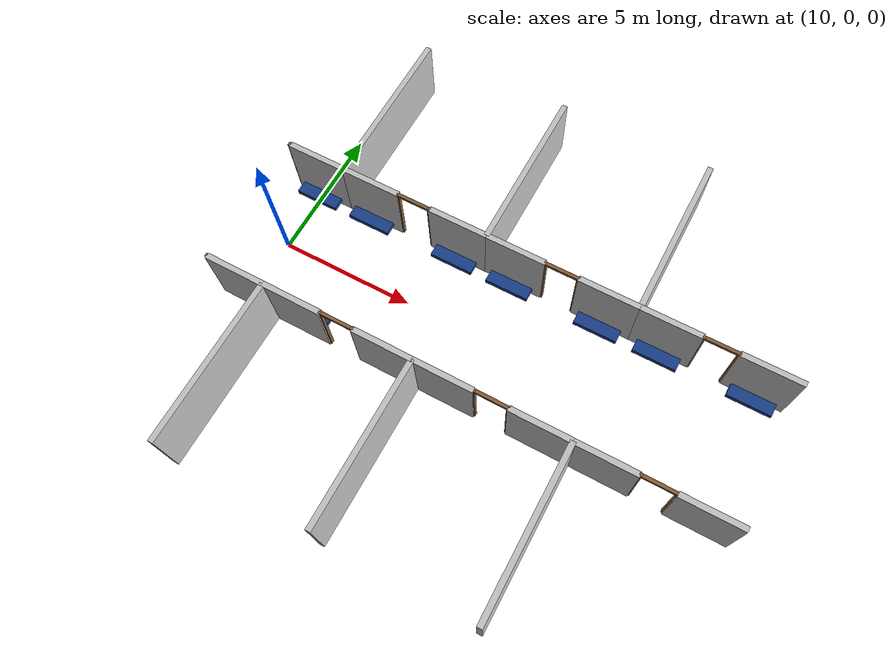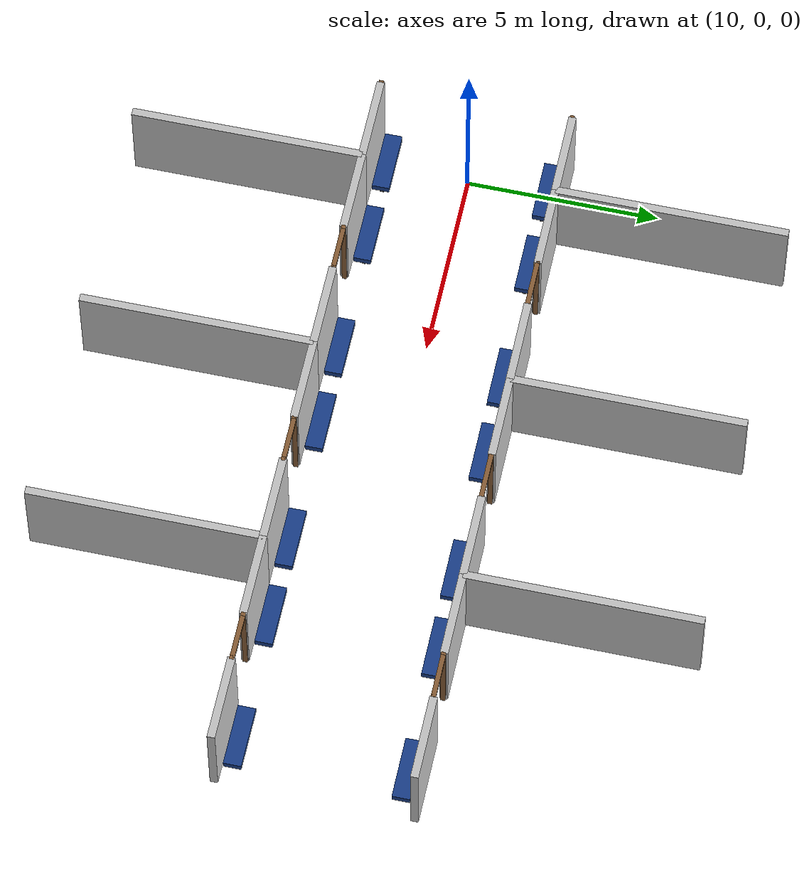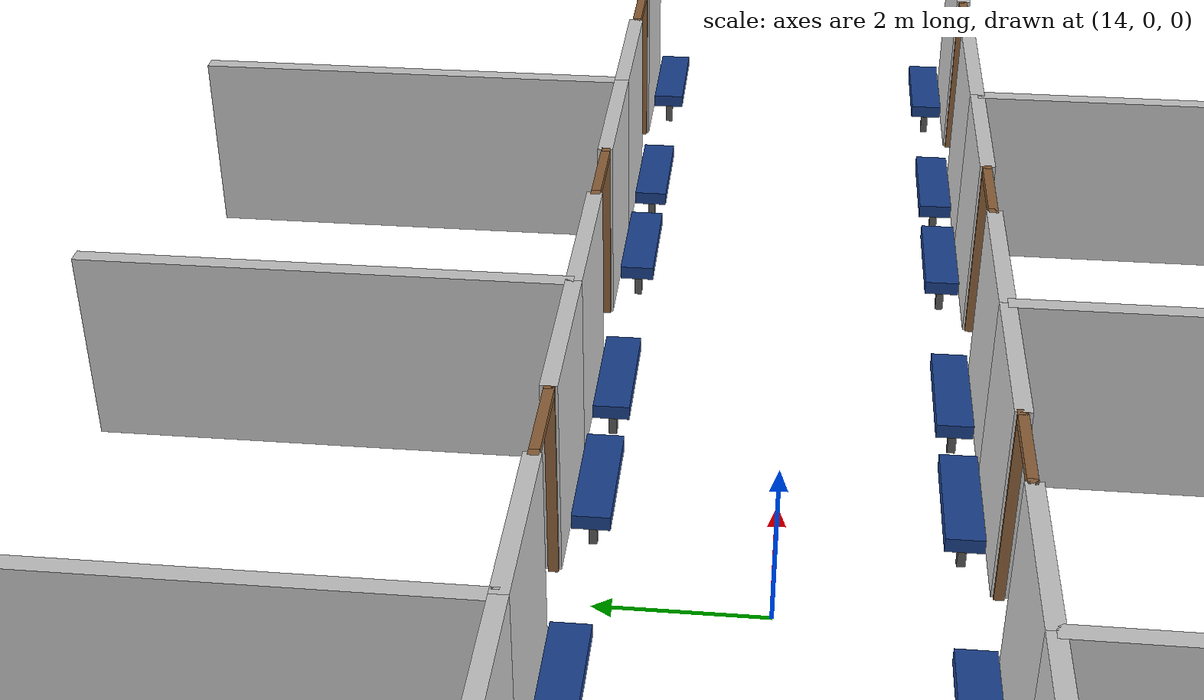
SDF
<sdf version="1.9">
 <world name="hospital_easy">
  <model name="north_partition_6">
   <static>true</static>
   <pose>11.200 5.500 1.250 0 0 0</pose>
   <link name="link">
    <collision name="collision"><geometry><box><size>0.200 6.000 2.500</size></box></geometry></collision>
    <visual name="visual">
     <geometry><box><size>0.200 6.000 2.500</size></box></geometry>
     <material><ambient>0.78 0.78 0.78 1.0</ambient><diffuse>0.78 0.78 0.78 1.0</diffuse></material>
    </visual>
   </link>
  </model>
  <model name="north_partition_7">
   <static>true</static>
   <pose>16.800 5.500 1.250 0 0 0</pose>
   <link name="link">
    <collision name="collision"><geometry><box><size>0.200 6.000 2.500</size></box></geometry></collision>
    <visual name="visual">
     <geometry><box><size>0.200 6.000 2.500</size></box></geometry>
     <material><ambient>0.78 0.78 0.78 1.0</ambient><diffuse>0.78 0.78 0.78 1.0</diffuse></material>
    </visual>
   </link>
  </model>
  <model name="north_partition_8">
   <static>true</static>
   <pose>22.400 5.500 1.250 0 0 0</pose>
   <link name="link">
    <collision name="collision"><geometry><box><size>0.200 6.000 2.500</size></box></geometry></collision>
    <visual name="visual">
     <geometry><box><size>0.200 6.000 2.500</size></box></geometry>
     <material><ambient>0.78 0.78 0.78 1.0</ambient><diffuse>0.78 0.78 0.78 1.0</diffuse></material>
    </visual>
   </link>
  </model>
  <model name="south_partition_6">
   <static>true</static>
   <pose>11.200 -5.500 1.250 0 0 0</pose>
   <link name="link">
    <collision name="collision"><geometry><box><size>0.200 6.000 2.500</size></box></geometry></collision>
    <visual name="visual">
     <geometry><box><size>0.200 6.000 2.500</size></box></geometry>
     <material><ambient>0.78 0.78 0.78 1.0</ambient><diffuse>0.78 0.78 0.78 1.0</diffuse></material>
    </visual>
   </link>
  </model>
  <model name="south_partition_7">
   <static>true</static>
   <pose>16.800 -5.500 1.250 0 0 0</pose>
   <link name="link">
    <collision name="collision"><geometry><box><size>0.200 6.000 2.500</size></box></geometry></collision>
    <visual name="visual">
     <geometry><box><size>0.200 6.000 2.500</size></box></geometry>
     <material><ambient>0.78 0.78 0.78 1.0</ambient><diffuse>0.78 0.78 0.78 1.0</diffuse></material>
    </visual>
   </link>
  </model>
  <model name="south_partition_8">
   <static>true</static>
   <pose>22.400 -5.500 1.250 0 0 0</pose>
   <link name="link">
    <collision name="collision"><geometry><box><size>0.200 6.000 2.500</size></box></geometry></collision>
    <visual name="visual">
     <geometry><box><size>0.200 6.000 2.500</size></box></geometry>
     <material><ambient>0.78 0.78 0.78 1.0</ambient><diffuse>0.78 0.78 0.78 1.0</diffuse></material>
    </visual>
   </link>
  </model>
  <model name="north_room_07_wall_right">
   <static>true</static>
   <pose>10.100 2.500 1.250 0 0 0</pose>
   <link name="link">
    <collision name="collision"><geometry><box><size>2.200 0.200 2.500</size></box></geometry></collision>
    <visual name="visual">
     <geometry><box><size>2.200 0.200 2.500</size></box></geometry>
     <material><ambient>0.78 0.78 0.78 1.0</ambient><diffuse>0.78 0.78 0.78 1.0</diffuse></material>
    </visual>
   </link>
  </model>
  <model name="north_room_08_wall_left">
   <static>true</static>
   <pose>12.300 2.500 1.250 0 0 0</pose>
   <link name="link">
    <collision name="collision"><geometry><box><size>2.200 0.200 2.500</size></box></geometry></collision>
    <visual name="visual">
     <geometry><box><size>2.200 0.200 2.500</size></box></geometry>
     <material><ambient>0.78 0.78 0.78 1.0</ambient><diffuse>0.78 0.78 0.78 1.0</diffuse></material>
    </visual>
   </link>
  </model>
  <model name="north_room_08_wall_right">
   <static>true</static>
   <pose>15.700 2.500 1.250 0 0 0</pose>
   <link name="link">
    <collision name="collision"><geometry><box><size>2.200 0.200 2.500</size></box></geometry></collision>
    <visual name="visual">
     <geometry><box><size>2.200 0.200 2.500</size></box></geometry>
     <material><ambient>0.78 0.78 0.78 1.0</ambient><diffuse>0.78 0.78 0.78 1.0</diffuse></material>
    </visual>
   </link>
  </model>
  <model name="north_room_09_wall_left">
   <static>true</static>
   <pose>17.900 2.500 1.250 0 0 0</pose>
   <link name="link">
    <collision name="collision"><geometry><box><size>2.200 0.200 2.500</size></box></geometry></collision>
    <visual name="visual">
     <geometry><box><size>2.200 0.200 2.500</size></box></geometry>
     <material><ambient>0.78 0.78 0.78 1.0</ambient><diffuse>0.78 0.78 0.78 1.0</diffuse></material>
    </visual>
   </link>
  </model>
  <model name="north_room_09_wall_right">
   <static>true</static>
   <pose>21.300 2.500 1.250 0 0 0</pose>
   <link name="link">
    <collision name="collision"><geometry><box><size>2.200 0.200 2.500</size></box></geometry></collision>
    <visual name="visual">
     <geometry><box><size>2.200 0.200 2.500</size></box></geometry>
     <material><ambient>0.78 0.78 0.78 1.0</ambient><diffuse>0.78 0.78 0.78 1.0</diffuse></material>
    </visual>
   </link>
  </model>
  <model name="north_room_10_wall_left">
   <static>true</static>
   <pose>23.500 2.500 1.250 0 0 0</pose>
   <link name="link">
    <collision name="collision"><geometry><box><size>2.200 0.200 2.500</size></box></geometry></collision>
    <visual name="visual">
     <geometry><box><size>2.200 0.200 2.500</size></box></geometry>
     <material><ambient>0.78 0.78 0.78 1.0</ambient><diffuse>0.78 0.78 0.78 1.0</diffuse></material>
    </visual>
   </link>
  </model>
  <model name="north_room_10_wall_right">
   <static>true</static>
   <pose>26.900 2.500 1.250 0 0 0</pose>
   <link name="link">
    <collision name="collision"><geometry><box><size>2.200 0.200 2.500</size></box></geometry></collision>
    <visual name="visual">
     <geometry><box><size>2.200 0.200 2.500</size></box></geometry>
     <material><ambient>0.78 0.78 0.78 1.0</ambient><diffuse>0.78 0.78 0.78 1.0</diffuse></material>
    </visual>
   </link>
  </model>
  <model name="south_room_07_wall_right">
   <static>true</static>
   <pose>10.100 -2.500 1.250 0 0 0</pose>
   <link name="link">
    <collision name="collision"><geometry><box><size>2.200 0.200 2.500</size></box></geometry></collision>
    <visual name="visual">
     <geometry><box><size>2.200 0.200 2.500</size></box></geometry>
     <material><ambient>0.78 0.78 0.78 1.0</ambient><diffuse>0.78 0.78 0.78 1.0</diffuse></material>
    </visual>
   </link>
  </model>
  <model name="south_room_08_wall_left">
   <static>true</static>
   <pose>12.300 -2.500 1.250 0 0 0</pose>
   <link name="link">
    <collision name="collision"><geometry><box><size>2.200 0.200 2.500</size></box></geometry></collision>
    <visual name="visual">
     <geometry><box><size>2.200 0.200 2.500</size></box></geometry>
     <material><ambient>0.78 0.78 0.78 1.0</ambient><diffuse>0.78 0.78 0.78 1.0</diffuse></material>
    </visual>
   </link>
  </model>
  <model name="south_room_08_wall_right">
   <static>true</static>
   <pose>15.700 -2.500 1.250 0 0 0</pose>
   <link name="link">
    <collision name="collision"><geometry><box><size>2.200 0.200 2.500</size></box></geometry></collision>
    <visual name="visual">
     <geometry><box><size>2.200 0.200 2.500</size></box></geometry>
     <material><ambient>0.78 0.78 0.78 1.0</ambient><diffuse>0.78 0.78 0.78 1.0</diffuse></material>
    </visual>
   </link>
  </model>
  <model name="south_room_09_wall_left">
   <static>true</static>
   <pose>17.900 -2.500 1.250 0 0 0</pose>
   <link name="link">
    <collision name="collision"><geometry><box><size>2.200 0.200 2.500</size></box></geometry></collision>
    <visual name="visual">
     <geometry><box><size>2.200 0.200 2.500</size></box></geometry>
     <material><ambient>0.78 0.78 0.78 1.0</ambient><diffuse>0.78 0.78 0.78 1.0</diffuse></material>
    </visual>
   </link>
  </model>
  <model name="south_room_09_wall_right">
   <static>true</static>
   <pose>21.300 -2.500 1.250 0 0 0</pose>
   <link name="link">
    <collision name="collision"><geometry><box><size>2.200 0.200 2.500</size></box></geometry></collision>
    <visual name="visual">
     <geometry><box><size>2.200 0.200 2.500</size></box></geometry>
     <material><ambient>0.78 0.78 0.78 1.0</ambient><diffuse>0.78 0.78 0.78 1.0</diffuse></material>
    </visual>
   </link>
  </model>
  <model name="south_room_10_wall_left">
   <static>true</static>
   <pose>23.500 -2.500 1.250 0 0 0</pose>
   <link name="link">
    <collision name="collision"><geometry><box><size>2.200 0.200 2.500</size></box></geometry></collision>
    <visual name="visual">
     <geometry><box><size>2.200 0.200 2.500</size></box></geometry>
     <material><ambient>0.78 0.78 0.78 1.0</ambient><diffuse>0.78 0.78 0.78 1.0</diffuse></material>
    </visual>
   </link>
  </model>
  <model name="south_room_10_wall_right">
   <static>true</static>
   <pose>26.900 -2.500 1.250 0 0 0</pose>
   <link name="link">
    <collision name="collision"><geometry><box><size>2.200 0.200 2.500</size></box></geometry></collision>
    <visual name="visual">
     <geometry><box><size>2.200 0.200 2.500</size></box></geometry>
     <material><ambient>0.78 0.78 0.78 1.0</ambient><diffuse>0.78 0.78 0.78 1.0</diffuse></material>
    </visual>
   </link>
  </model>
  <model name="north_door_07_right">
   <static>true</static>
   <pose>9.000 2.490 1.250 0 0 0</pose>
   <link name="link">
    <collision name="collision"><geometry><box><size>0.100 0.120 2.500</size></box></geometry></collision>
    <visual name="visual">
     <geometry><box><size>0.100 0.120 2.500</size></box></geometry>
     <material><ambient>0.55 0.38 0.22 1.0</ambient><diffuse>0.55 0.38 0.22 1.0</diffuse></material>
    </visual>
   </link>
  </model>
  <model name="north_door_08_left">
   <static>true</static>
   <pose>13.400 2.490 1.250 0 0 0</pose>
   <link name="link">
    <collision name="collision"><geometry><box><size>0.100 0.120 2.500</size></box></geometry></collision>
    <visual name="visual">
     <geometry><box><size>0.100 0.120 2.500</size></box></geometry>
     <material><ambient>0.55 0.38 0.22 1.0</ambient><diffuse>0.55 0.38 0.22 1.0</diffuse></material>
    </visual>
   </link>
  </model>
  <model name="north_door_08_right">
   <static>true</static>
   <pose>14.600 2.490 1.250 0 0 0</pose>
   <link name="link">
    <collision name="collision"><geometry><box><size>0.100 0.120 2.500</size></box></geometry></collision>
    <visual name="visual">
     <geometry><box><size>0.100 0.120 2.500</size></box></geometry>
     <material><ambient>0.55 0.38 0.22 1.0</ambient><diffuse>0.55 0.38 0.22 1.0</diffuse></material>
    </visual>
   </link>
  </model>
  <model name="north_door_08_top">
   <static>true</static>
   <pose>14.000 2.490 2.450 0 0 0</pose>
   <link name="link">
    <collision name="collision"><geometry><box><size>1.200 0.120 0.100</size></box></geometry></collision>
    <visual name="visual">
     <geometry><box><size>1.200 0.120 0.100</size></box></geometry>
     <material><ambient>0.55 0.38 0.22 1.0</ambient><diffuse>0.55 0.38 0.22 1.0</diffuse></material>
    </visual>
   </link>
  </model>
  <model name="north_door_09_left">
   <static>true</static>
   <pose>19.000 2.490 1.250 0 0 0</pose>
   <link name="link">
    <collision name="collision"><geometry><box><size>0.100 0.120 2.500</size></box></geometry></collision>
    <visual name="visual">
     <geometry><box><size>0.100 0.120 2.500</size></box></geometry>
     <material><ambient>0.55 0.38 0.22 1.0</ambient><diffuse>0.55 0.38 0.22 1.0</diffuse></material>
    </visual>
   </link>
  </model>
  <model name="north_door_09_right">
   <static>true</static>
   <pose>20.200 2.490 1.250 0 0 0</pose>
   <link name="link">
    <collision name="collision"><geometry><box><size>0.100 0.120 2.500</size></box></geometry></collision>
    <visual name="visual">
     <geometry><box><size>0.100 0.120 2.500</size></box></geometry>
     <material><ambient>0.55 0.38 0.22 1.0</ambient><diffuse>0.55 0.38 0.22 1.0</diffuse></material>
    </visual>
   </link>
  </model>
  <model name="north_door_09_top">
   <static>true</static>
   <pose>19.600 2.490 2.450 0 0 0</pose>
   <link name="link">
    <collision name="collision"><geometry><box><size>1.200 0.120 0.100</size></box></geometry></collision>
    <visual name="visual">
     <geometry><box><size>1.200 0.120 0.100</size></box></geometry>
     <material><ambient>0.55 0.38 0.22 1.0</ambient><diffuse>0.55 0.38 0.22 1.0</diffuse></material>
    </visual>
   </link>
  </model>
  <model name="north_door_10_left">
   <static>true</static>
   <pose>24.600 2.490 1.250 0 0 0</pose>
   <link name="link">
    <collision name="collision"><geometry><box><size>0.100 0.120 2.500</size></box></geometry></collision>
    <visual name="visual">
     <geometry><box><size>0.100 0.120 2.500</size></box></geometry>
     <material><ambient>0.55 0.38 0.22 1.0</ambient><diffuse>0.55 0.38 0.22 1.0</diffuse></material>
    </visual>
   </link>
  </model>
  <model name="north_door_10_right">
   <static>true</static>
   <pose>25.800 2.490 1.250 0 0 0</pose>
   <link name="link">
    <collision name="collision"><geometry><box><size>0.100 0.120 2.500</size></box></geometry></collision>
    <visual name="visual">
     <geometry><box><size>0.100 0.120 2.500</size></box></geometry>
     <material><ambient>0.55 0.38 0.22 1.0</ambient><diffuse>0.55 0.38 0.22 1.0</diffuse></material>
    </visual>
   </link>
  </model>
  <model name="north_door_10_top">
   <static>true</static>
   <pose>25.200 2.490 2.450 0 0 0</pose>
   <link name="link">
    <collision name="collision"><geometry><box><size>1.200 0.120 0.100</size></box></geometry></collision>
    <visual name="visual">
     <geometry><box><size>1.200 0.120 0.100</size></box></geometry>
     <material><ambient>0.55 0.38 0.22 1.0</ambient><diffuse>0.55 0.38 0.22 1.0</diffuse></material>
    </visual>
   </link>
  </model>
  <model name="south_door_07_right">
   <static>true</static>
   <pose>9.000 -2.490 1.250 0 0 0</pose>
   <link name="link">
    <collision name="collision"><geometry><box><size>0.100 0.120 2.500</size></box></geometry></collision>
    <visual name="visual">
     <geometry><box><size>0.100 0.120 2.500</size></box></geometry>
     <material><ambient>0.55 0.38 0.22 1.0</ambient><diffuse>0.55 0.38 0.22 1.0</diffuse></material>
    </visual>
   </link>
  </model>
  <model name="south_door_08_left">
   <static>true</static>
   <pose>13.400 -2.490 1.250 0 0 0</pose>
   <link name="link">
    <collision name="collision"><geometry><box><size>0.100 0.120 2.500</size></box></geometry></collision>
    <visual name="visual">
     <geometry><box><size>0.100 0.120 2.500</size></box></geometry>
     <material><ambient>0.55 0.38 0.22 1.0</ambient><diffuse>0.55 0.38 0.22 1.0</diffuse></material>
    </visual>
   </link>
  </model>
  <model name="south_door_08_right">
   <static>true</static>
   <pose>14.600 -2.490 1.250 0 0 0</pose>
   <link name="link">
    <collision name="collision"><geometry><box><size>0.100 0.120 2.500</size></box></geometry></collision>
    <visual name="visual">
     <geometry><box><size>0.100 0.120 2.500</size></box></geometry>
     <material><ambient>0.55 0.38 0.22 1.0</ambient><diffuse>0.55 0.38 0.22 1.0</diffuse></material>
    </visual>
   </link>
  </model>
  <model name="south_door_08_top">
   <static>true</static>
   <pose>14.000 -2.490 2.450 0 0 0</pose>
   <link name="link">
    <collision name="collision"><geometry><box><size>1.200 0.120 0.100</size></box></geometry></collision>
    <visual name="visual">
     <geometry><box><size>1.200 0.120 0.100</size></box></geometry>
     <material><ambient>0.55 0.38 0.22 1.0</ambient><diffuse>0.55 0.38 0.22 1.0</diffuse></material>
    </visual>
   </link>
  </model>
  <model name="south_door_09_left">
   <static>true</static>
   <pose>19.000 -2.490 1.250 0 0 0</pose>
   <link name="link">
    <collision name="collision"><geometry><box><size>0.100 0.120 2.500</size></box></geometry></collision>
    <visual name="visual">
     <geometry><box><size>0.100 0.120 2.500</size></box></geometry>
     <material><ambient>0.55 0.38 0.22 1.0</ambient><diffuse>0.55 0.38 0.22 1.0</diffuse></material>
    </visual>
   </link>
  </model>
  <model name="south_door_09_right">
   <static>true</static>
   <pose>20.200 -2.490 1.250 0 0 0</pose>
   <link name="link">
    <collision name="collision"><geometry><box><size>0.100 0.120 2.500</size></box></geometry></collision>
    <visual name="visual">
     <geometry><box><size>0.100 0.120 2.500</size></box></geometry>
     <material><ambient>0.55 0.38 0.22 1.0</ambient><diffuse>0.55 0.38 0.22 1.0</diffuse></material>
    </visual>
   </link>
  </model>
  <model name="south_door_09_top">
   <static>true</static>
   <pose>19.600 -2.490 2.450 0 0 0</pose>
   <link name="link">
    <collision name="collision"><geometry><box><size>1.200 0.120 0.100</size></box></geometry></collision>
    <visual name="visual">
     <geometry><box><size>1.200 0.120 0.100</size></box></geometry>
     <material><ambient>0.55 0.38 0.22 1.0</ambient><diffuse>0.55 0.38 0.22 1.0</diffuse></material>
    </visual>
   </link>
  </model>
  <model name="south_door_10_left">
   <static>true</static>
   <pose>24.600 -2.490 1.250 0 0 0</pose>
   <link name="link">
    <collision name="collision"><geometry><box><size>0.100 0.120 2.500</size></box></geometry></collision>
    <visual name="visual">
     <geometry><box><size>0.100 0.120 2.500</size></box></geometry>
     <material><ambient>0.55 0.38 0.22 1.0</ambient><diffuse>0.55 0.38 0.22 1.0</diffuse></material>
    </visual>
   </link>
  </model>
  <model name="south_door_10_right">
   <static>true</static>
   <pose>25.800 -2.490 1.250 0 0 0</pose>
   <link name="link">
    <collision name="collision"><geometry><box><size>0.100 0.120 2.500</size></box></geometry></collision>
    <visual name="visual">
     <geometry><box><size>0.100 0.120 2.500</size></box></geometry>
     <material><ambient>0.55 0.38 0.22 1.0</ambient><diffuse>0.55 0.38 0.22 1.0</diffuse></material>
    </visual>
   </link>
  </model>
  <model name="south_door_10_top">
   <static>true</static>
   <pose>25.200 -2.490 2.450 0 0 0</pose>
   <link name="link">
    <collision name="collision"><geometry><box><size>1.200 0.120 0.100</size></box></geometry></collision>
    <visual name="visual">
     <geometry><box><size>1.200 0.120 0.100</size></box></geometry>
     <material><ambient>0.55 0.38 0.22 1.0</ambient><diffuse>0.55 0.38 0.22 1.0</diffuse></material>
    </visual>
   </link>
  </model>
  <model name="north_room_07_bench_right_seat">
   <static>true</static>
   <pose>10.100 2.100 0.450 0 0 0</pose>
   <link name="link">
    <collision name="collision"><geometry><box><size>1.600 0.450 0.180</size></box></geometry></collision>
    <visual name="visual">
     <geometry><box><size>1.600 0.450 0.180</size></box></geometry>
     <material><ambient>0.10 0.25 0.55 1.0</ambient><diffuse>0.10 0.25 0.55 1.0</diffuse></material>
    </visual>
   </link>
  </model>
  <model name="north_room_07_bench_right_leg_left">
   <static>true</static>
   <pose>9.540 2.100 0.135 0 0 0</pose>
   <link name="link">
    <collision name="collision"><geometry><box><size>0.100 0.100 0.270</size></box></geometry></collision>
    <visual name="visual">
     <geometry><box><size>0.100 0.100 0.270</size></box></geometry>
     <material><ambient>0.35 0.35 0.35 1.0</ambient><diffuse>0.35 0.35 0.35 1.0</diffuse></material>
    </visual>
   </link>
  </model>
  <model name="north_room_07_bench_right_leg_right">
   <static>true</static>
   <pose>10.660 2.100 0.135 0 0 0</pose>
   <link name="link">
    <collision name="collision"><geometry><box><size>0.100 0.100 0.270</size></box></geometry></collision>
    <visual name="visual">
     <geometry><box><size>0.100 0.100 0.270</size></box></geometry>
     <material><ambient>0.35 0.35 0.35 1.0</ambient><diffuse>0.35 0.35 0.35 1.0</diffuse></material>
    </visual>
   </link>
  </model>
  <model name="north_room_08_bench_left_seat">
   <static>true</static>
   <pose>12.300 2.100 0.450 0 0 0</pose>
   <link name="link">
    <collision name="collision"><geometry><box><size>1.600 0.450 0.180</size></box></geometry></collision>
    <visual name="visual">
     <geometry><box><size>1.600 0.450 0.180</size></box></geometry>
     <material><ambient>0.10 0.25 0.55 1.0</ambient><diffuse>0.10 0.25 0.55 1.0</diffuse></material>
    </visual>
   </link>
  </model>
  <model name="north_room_08_bench_left_leg_left">
   <static>true</static>
   <pose>11.740 2.100 0.135 0 0 0</pose>
   <link name="link">
    <collision name="collision"><geometry><box><size>0.100 0.100 0.270</size></box></geometry></collision>
    <visual name="visual">
     <geometry><box><size>0.100 0.100 0.270</size></box></geometry>
     <material><ambient>0.35 0.35 0.35 1.0</ambient><diffuse>0.35 0.35 0.35 1.0</diffuse></material>
    </visual>
   </link>
  </model>
  <model name="north_room_08_bench_left_leg_right">
   <static>true</static>
   <pose>12.860 2.100 0.135 0 0 0</pose>
   <link name="link">
    <collision name="collision"><geometry><box><size>0.100 0.100 0.270</size></box></geometry></collision>
    <visual name="visual">
     <geometry><box><size>0.100 0.100 0.270</size></box></geometry>
     <material><ambient>0.35 0.35 0.35 1.0</ambient><diffuse>0.35 0.35 0.35 1.0</diffuse></material>
    </visual>
   </link>
  </model>
  <model name="north_room_08_bench_right_seat">
   <static>true</static>
   <pose>15.700 2.100 0.450 0 0 0</pose>
   <link name="link">
    <collision name="collision"><geometry><box><size>1.600 0.450 0.180</size></box></geometry></collision>
    <visual name="visual">
     <geometry><box><size>1.600 0.450 0.180</size></box></geometry>
     <material><ambient>0.10 0.25 0.55 1.0</ambient><diffuse>0.10 0.25 0.55 1.0</diffuse></material>
    </visual>
   </link>
  </model>
  <model name="north_room_08_bench_right_leg_left">
   <static>true</static>
   <pose>15.140 2.100 0.135 0 0 0</pose>
   <link name="link">
    <collision name="collision"><geometry><box><size>0.100 0.100 0.270</size></box></geometry></collision>
    <visual name="visual">
     <geometry><box><size>0.100 0.100 0.270</size></box></geometry>
     <material><ambient>0.35 0.35 0.35 1.0</ambient><diffuse>0.35 0.35 0.35 1.0</diffuse></material>
    </visual>
   </link>
  </model>
  <model name="north_room_08_bench_right_leg_right">
   <static>true</static>
   <pose>16.260 2.100 0.135 0 0 0</pose>
   <link name="link">
    <collision name="collision"><geometry><box><size>0.100 0.100 0.270</size></box></geometry></collision>
    <visual name="visual">
     <geometry><box><size>0.100 0.100 0.270</size></box></geometry>
     <material><ambient>0.35 0.35 0.35 1.0</ambient><diffuse>0.35 0.35 0.35 1.0</diffuse></material>
    </visual>
   </link>
  </model>
  <model name="north_room_09_bench_left_seat">
   <static>true</static>
   <pose>17.900 2.100 0.450 0 0 0</pose>
   <link name="link">
    <collision name="collision"><geometry><box><size>1.600 0.450 0.180</size></box></geometry></collision>
    <visual name="visual">
     <geometry><box><size>1.600 0.450 0.180</size></box></geometry>
     <material><ambient>0.10 0.25 0.55 1.0</ambient><diffuse>0.10 0.25 0.55 1.0</diffuse></material>
    </visual>
   </link>
  </model>
  <model name="north_room_09_bench_left_leg_left">
   <static>true</static>
   <pose>17.340 2.100 0.135 0 0 0</pose>
   <link name="link">
    <collision name="collision"><geometry><box><size>0.100 0.100 0.270</size></box></geometry></collision>
    <visual name="visual">
     <geometry><box><size>0.100 0.100 0.270</size></box></geometry>
     <material><ambient>0.35 0.35 0.35 1.0</ambient><diffuse>0.35 0.35 0.35 1.0</diffuse></material>
    </visual>
   </link>
  </model>
  <model name="north_room_09_bench_left_leg_right">
   <static>true</static>
   <pose>18.460 2.100 0.135 0 0 0</pose>
   <link name="link">
    <collision name="collision"><geometry><box><size>0.100 0.100 0.270</size></box></geometry></collision>
    <visual name="visual">
     <geometry><box><size>0.100 0.100 0.270</size></box></geometry>
     <material><ambient>0.35 0.35 0.35 1.0</ambient><diffuse>0.35 0.35 0.35 1.0</diffuse></material>
    </visual>
   </link>
  </model>
  <model name="north_room_09_bench_right_seat">
   <static>true</static>
   <pose>21.300 2.100 0.450 0 0 0</pose>
   <link name="link">
    <collision name="collision"><geometry><box><size>1.600 0.450 0.180</size></box></geometry></collision>
    <visual name="visual">
     <geometry><box><size>1.600 0.450 0.180</size></box></geometry>
     <material><ambient>0.10 0.25 0.55 1.0</ambient><diffuse>0.10 0.25 0.55 1.0</diffuse></material>
    </visual>
   </link>
  </model>
  <model name="north_room_09_bench_right_leg_left">
   <static>true</static>
   <pose>20.740 2.100 0.135 0 0 0</pose>
   <link name="link">
    <collision name="collision"><geometry><box><size>0.100 0.100 0.270</size></box></geometry></collision>
    <visual name="visual">
     <geometry><box><size>0.100 0.100 0.270</size></box></geometry>
     <material><ambient>0.35 0.35 0.35 1.0</ambient><diffuse>0.35 0.35 0.35 1.0</diffuse></material>
    </visual>
   </link>
  </model>
  <model name="north_room_09_bench_right_leg_right">
   <static>true</static>
   <pose>21.860 2.100 0.135 0 0 0</pose>
   <link name="link">
    <collision name="collision"><geometry><box><size>0.100 0.100 0.270</size></box></geometry></collision>
    <visual name="visual">
     <geometry><box><size>0.100 0.100 0.270</size></box></geometry>
     <material><ambient>0.35 0.35 0.35 1.0</ambient><diffuse>0.35 0.35 0.35 1.0</diffuse></material>
    </visual>
   </link>
  </model>
  <model name="north_room_10_bench_left_seat">
   <static>true</static>
   <pose>23.500 2.100 0.450 0 0 0</pose>
   <link name="link">
    <collision name="collision"><geometry><box><size>1.600 0.450 0.180</size></box></geometry></collision>
    <visual name="visual">
     <geometry><box><size>1.600 0.450 0.180</size></box></geometry>
     <material><ambient>0.10 0.25 0.55 1.0</ambient><diffuse>0.10 0.25 0.55 1.0</diffuse></material>
    </visual>
   </link>
  </model>
  <model name="north_room_10_bench_left_leg_left">
   <static>true</static>
   <pose>22.940 2.100 0.135 0 0 0</pose>
   <link name="link">
    <collision name="collision"><geometry><box><size>0.100 0.100 0.270</size></box></geometry></collision>
    <visual name="visual">
     <geometry><box><size>0.100 0.100 0.270</size></box></geometry>
     <material><ambient>0.35 0.35 0.35 1.0</ambient><diffuse>0.35 0.35 0.35 1.0</diffuse></material>
    </visual>
   </link>
  </model>
  <model name="north_room_10_bench_left_leg_right">
   <static>true</static>
   <pose>24.060 2.100 0.135 0 0 0</pose>
   <link name="link">
    <collision name="collision"><geometry><box><size>0.100 0.100 0.270</size></box></geometry></collision>
    <visual name="visual">
     <geometry><box><size>0.100 0.100 0.270</size></box></geometry>
     <material><ambient>0.35 0.35 0.35 1.0</ambient><diffuse>0.35 0.35 0.35 1.0</diffuse></material>
    </visual>
   </link>
  </model>
  <model name="north_room_10_bench_right_seat">
   <static>true</static>
   <pose>26.900 2.100 0.450 0 0 0</pose>
   <link name="link">
    <collision name="collision"><geometry><box><size>1.600 0.450 0.180</size></box></geometry></collision>
    <visual name="visual">
     <geometry><box><size>1.600 0.450 0.180</size></box></geometry>
     <material><ambient>0.10 0.25 0.55 1.0</ambient><diffuse>0.10 0.25 0.55 1.0</diffuse></material>
    </visual>
   </link>
  </model>
  <model name="north_room_10_bench_right_leg_left">
   <static>true</static>
   <pose>26.340 2.100 0.135 0 0 0</pose>
   <link name="link">
    <collision name="collision"><geometry><box><size>0.100 0.100 0.270</size></box></geometry></collision>
    <visual name="visual">
     <geometry><box><size>0.100 0.100 0.270</size></box></geometry>
     <material><ambient>0.35 0.35 0.35 1.0</ambient><diffuse>0.35 0.35 0.35 1.0</diffuse></material>
    </visual>
   </link>
  </model>
  <model name="north_room_10_bench_right_leg_right">
   <static>true</static>
   <pose>27.460 2.100 0.135 0 0 0</pose>
   <link name="link">
    <collision name="collision"><geometry><box><size>0.100 0.100 0.270</size></box></geometry></collision>
    <visual name="visual">
     <geometry><box><size>0.100 0.100 0.270</size></box></geometry>
     <material><ambient>0.35 0.35 0.35 1.0</ambient><diffuse>0.35 0.35 0.35 1.0</diffuse></material>
    </visual>
   </link>
  </model>
  <model name="south_room_07_bench_right_seat">
   <static>true</static>
   <pose>10.100 -2.100 0.450 0 0 0</pose>
   <link name="link">
    <collision name="collision"><geometry><box><size>1.600 0.450 0.180</size></box></geometry></collision>
    <visual name="visual">
     <geometry><box><size>1.600 0.450 0.180</size></box></geometry>
     <material><ambient>0.10 0.25 0.55 1.0</ambient><diffuse>0.10 0.25 0.55 1.0</diffuse></material>
    </visual>
   </link>
  </model>
  <model name="south_room_07_bench_right_leg_left">
   <static>true</static>
   <pose>9.540 -2.100 0.135 0 0 0</pose>
   <link name="link">
    <collision name="collision"><geometry><box><size>0.100 0.100 0.270</size></box></geometry></collision>
    <visual name="visual">
     <geometry><box><size>0.100 0.100 0.270</size></box></geometry>
     <material><ambient>0.35 0.35 0.35 1.0</ambient><diffuse>0.35 0.35 0.35 1.0</diffuse></material>
    </visual>
   </link>
  </model>
  <model name="south_room_07_bench_right_leg_right">
   <static>true</static>
   <pose>10.660 -2.100 0.135 0 0 0</pose>
   <link name="link">
    <collision name="collision"><geometry><box><size>0.100 0.100 0.270</size></box></geometry></collision>
    <visual name="visual">
     <geometry><box><size>0.100 0.100 0.270</size></box></geometry>
     <material><ambient>0.35 0.35 0.35 1.0</ambient><diffuse>0.35 0.35 0.35 1.0</diffuse></material>
    </visual>
   </link>
  </model>
  <model name="south_room_08_bench_left_seat">
   <static>true</static>
   <pose>12.300 -2.100 0.450 0 0 0</pose>
   <link name="link">
    <collision name="collision"><geometry><box><size>1.600 0.450 0.180</size></box></geometry></collision>
    <visual name="visual">
     <geometry><box><size>1.600 0.450 0.180</size></box></geometry>
     <material><ambient>0.10 0.25 0.55 1.0</ambient><diffuse>0.10 0.25 0.55 1.0</diffuse></material>
    </visual>
   </link>
  </model>
  <model name="south_room_08_bench_left_leg_left">
   <static>true</static>
   <pose>11.740 -2.100 0.135 0 0 0</pose>
   <link name="link">
    <collision name="collision"><geometry><box><size>0.100 0.100 0.270</size></box></geometry></collision>
    <visual name="visual">
     <geometry><box><size>0.100 0.100 0.270</size></box></geometry>
     <material><ambient>0.35 0.35 0.35 1.0</ambient><diffuse>0.35 0.35 0.35 1.0</diffuse></material>
    </visual>
   </link>
  </model>
  <model name="south_room_08_bench_left_leg_right">
   <static>true</static>
   <pose>12.860 -2.100 0.135 0 0 0</pose>
   <link name="link">
    <collision name="collision"><geometry><box><size>0.100 0.100 0.270</size></box></geometry></collision>
    <visual name="visual">
     <geometry><box><size>0.100 0.100 0.270</size></box></geometry>
     <material><ambient>0.35 0.35 0.35 1.0</ambient><diffuse>0.35 0.35 0.35 1.0</diffuse></material>
    </visual>
   </link>
  </model>
  <model name="south_room_08_bench_right_seat">
   <static>true</static>
   <pose>15.700 -2.100 0.450 0 0 0</pose>
   <link name="link">
    <collision name="collision"><geometry><box><size>1.600 0.450 0.180</size></box></geometry></collision>
    <visual name="visual">
     <geometry><box><size>1.600 0.450 0.180</size></box></geometry>
     <material><ambient>0.10 0.25 0.55 1.0</ambient><diffuse>0.10 0.25 0.55 1.0</diffuse></material>
    </visual>
   </link>
  </model>
  <model name="south_room_08_bench_right_leg_left">
   <static>true</static>
   <pose>15.140 -2.100 0.135 0 0 0</pose>
   <link name="link">
    <collision name="collision"><geometry><box><size>0.100 0.100 0.270</size></box></geometry></collision>
    <visual name="visual">
     <geometry><box><size>0.100 0.100 0.270</size></box></geometry>
     <material><ambient>0.35 0.35 0.35 1.0</ambient><diffuse>0.35 0.35 0.35 1.0</diffuse></material>
    </visual>
   </link>
  </model>
  <model name="south_room_08_bench_right_leg_right">
   <static>true</static>
   <pose>16.260 -2.100 0.135 0 0 0</pose>
   <link name="link">
    <collision name="collision"><geometry><box><size>0.100 0.100 0.270</size></box></geometry></collision>
    <visual name="visual">
     <geometry><box><size>0.100 0.100 0.270</size></box></geometry>
     <material><ambient>0.35 0.35 0.35 1.0</ambient><diffuse>0.35 0.35 0.35 1.0</diffuse></material>
    </visual>
   </link>
  </model>
  <model name="south_room_09_bench_left_seat">
   <static>true</static>
   <pose>17.900 -2.100 0.450 0 0 0</pose>
   <link name="link">
    <collision name="collision"><geometry><box><size>1.600 0.450 0.180</size></box></geometry></collision>
    <visual name="visual">
     <geometry><box><size>1.600 0.450 0.180</size></box></geometry>
     <material><ambient>0.10 0.25 0.55 1.0</ambient><diffuse>0.10 0.25 0.55 1.0</diffuse></material>
    </visual>
   </link>
  </model>
  <model name="south_room_09_bench_left_leg_left">
   <static>true</static>
   <pose>17.340 -2.100 0.135 0 0 0</pose>
   <link name="link">
    <collision name="collision"><geometry><box><size>0.100 0.100 0.270</size></box></geometry></collision>
    <visual name="visual">
     <geometry><box><size>0.100 0.100 0.270</size></box></geometry>
     <material><ambient>0.35 0.35 0.35 1.0</ambient><diffuse>0.35 0.35 0.35 1.0</diffuse></material>
    </visual>
   </link>
  </model>
  <model name="south_room_09_bench_left_leg_right">
   <static>true</static>
   <pose>18.460 -2.100 0.135 0 0 0</pose>
   <link name="link">
    <collision name="collision"><geometry><box><size>0.100 0.100 0.270</size></box></geometry></collision>
    <visual name="visual">
     <geometry><box><size>0.100 0.100 0.270</size></box></geometry>
     <material><ambient>0.35 0.35 0.35 1.0</ambient><diffuse>0.35 0.35 0.35 1.0</diffuse></material>
    </visual>
   </link>
  </model>
  <model name="south_room_09_bench_right_seat">
   <static>true</static>
   <pose>21.300 -2.100 0.450 0 0 0</pose>
   <link name="link">
    <collision name="collision"><geometry><box><size>1.600 0.450 0.180</size></box></geometry></collision>
    <visual name="visual">
     <geometry><box><size>1.600 0.450 0.180</size></box></geometry>
     <material><ambient>0.10 0.25 0.55 1.0</ambient><diffuse>0.10 0.25 0.55 1.0</diffuse></material>
    </visual>
   </link>
  </model>
  <model name="south_room_09_bench_right_leg_left">
   <static>true</static>
   <pose>20.740 -2.100 0.135 0 0 0</pose>
   <link name="link">
    <collision name="collision"><geometry><box><size>0.100 0.100 0.270</size></box></geometry></collision>
    <visual name="visual">
     <geometry><box><size>0.100 0.100 0.270</size></box></geometry>
     <material><ambient>0.35 0.35 0.35 1.0</ambient><diffuse>0.35 0.35 0.35 1.0</diffuse></material>
    </visual>
   </link>
  </model>
  <model name="south_room_09_bench_right_leg_right">
   <static>true</static>
   <pose>21.860 -2.100 0.135 0 0 0</pose>
   <link name="link">
    <collision name="collision"><geometry><box><size>0.100 0.100 0.270</size></box></geometry></collision>
    <visual name="visual">
     <geometry><box><size>0.100 0.100 0.270</size></box></geometry>
     <material><ambient>0.35 0.35 0.35 1.0</ambient><diffuse>0.35 0.35 0.35 1.0</diffuse></material>
    </visual>
   </link>
  </model>
  <model name="south_room_10_bench_left_seat">
   <static>true</static>
   <pose>23.500 -2.100 0.450 0 0 0</pose>
   <link name="link">
    <collision name="collision"><geometry><box><size>1.600 0.450 0.180</size></box></geometry></collision>
    <visual name="visual">
     <geometry><box><size>1.600 0.450 0.180</size></box></geometry>
     <material><ambient>0.10 0.25 0.55 1.0</ambient><diffuse>0.10 0.25 0.55 1.0</diffuse></material>
    </visual>
   </link>
  </model>
  <model name="south_room_10_bench_left_leg_left">
   <static>true</static>
   <pose>22.940 -2.100 0.135 0 0 0</pose>
   <link name="link">
    <collision name="collision"><geometry><box><size>0.100 0.100 0.270</size></box></geometry></collision>
    <visual name="visual">
     <geometry><box><size>0.100 0.100 0.270</size></box></geometry>
     <material><ambient>0.35 0.35 0.35 1.0</ambient><diffuse>0.35 0.35 0.35 1.0</diffuse></material>
    </visual>
   </link>
  </model>
  <model name="south_room_10_bench_left_leg_right">
   <static>true</static>
   <pose>24.060 -2.100 0.135 0 0 0</pose>
   <link name="link">
    <collision name="collision"><geometry><box><size>0.100 0.100 0.270</size></box></geometry></collision>
    <visual name="visual">
     <geometry><box><size>0.100 0.100 0.270</size></box></geometry>
     <material><ambient>0.35 0.35 0.35 1.0</ambient><diffuse>0.35 0.35 0.35 1.0</diffuse></material>
    </visual>
   </link>
  </model>
  <model name="south_room_10_bench_right_seat">
   <static>true</static>
   <pose>26.900 -2.100 0.450 0 0 0</pose>
   <link name="link">
    <collision name="collision"><geometry><box><size>1.600 0.450 0.180</size></box></geometry></collision>
    <visual name="visual">
     <geometry><box><size>1.600 0.450 0.180</size></box></geometry>
     <material><ambient>0.10 0.25 0.55 1.0</ambient><diffuse>0.10 0.25 0.55 1.0</diffuse></material>
    </visual>
   </link>
  </model>
  <model name="south_room_10_bench_right_leg_left">
   <static>true</static>
   <pose>26.340 -2.100 0.135 0 0 0</pose>
   <link name="link">
    <collision name="collision"><geometry><box><size>0.100 0.100 0.270</size></box></geometry></collision>
    <visual name="visual">
     <geometry><box><size>0.100 0.100 0.270</size></box></geometry>
     <material><ambient>0.35 0.35 0.35 1.0</ambient><diffuse>0.35 0.35 0.35 1.0</diffuse></material>
    </visual>
   </link>
  </model>
  <model name="south_room_10_bench_right_leg_right">
   <static>true</static>
   <pose>27.460 -2.100 0.135 0 0 0</pose>
   <link name="link">
    <collision name="collision"><geometry><box><size>0.100 0.100 0.270</size></box></geometry></collision>
    <visual name="visual">
     <geometry><box><size>0.100 0.100 0.270</size></box></geometry>
     <material><ambient>0.35 0.35 0.35 1.0</ambient><diffuse>0.35 0.35 0.35 1.0</diffuse></material>
    </visual>
   </link>
  </model>
 </world>
</sdf>
